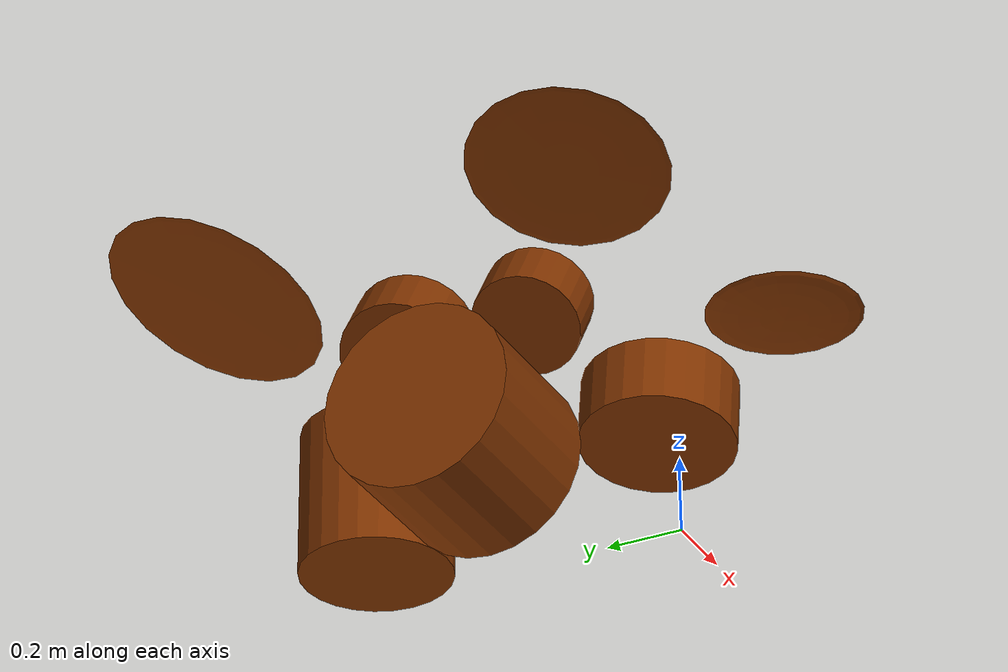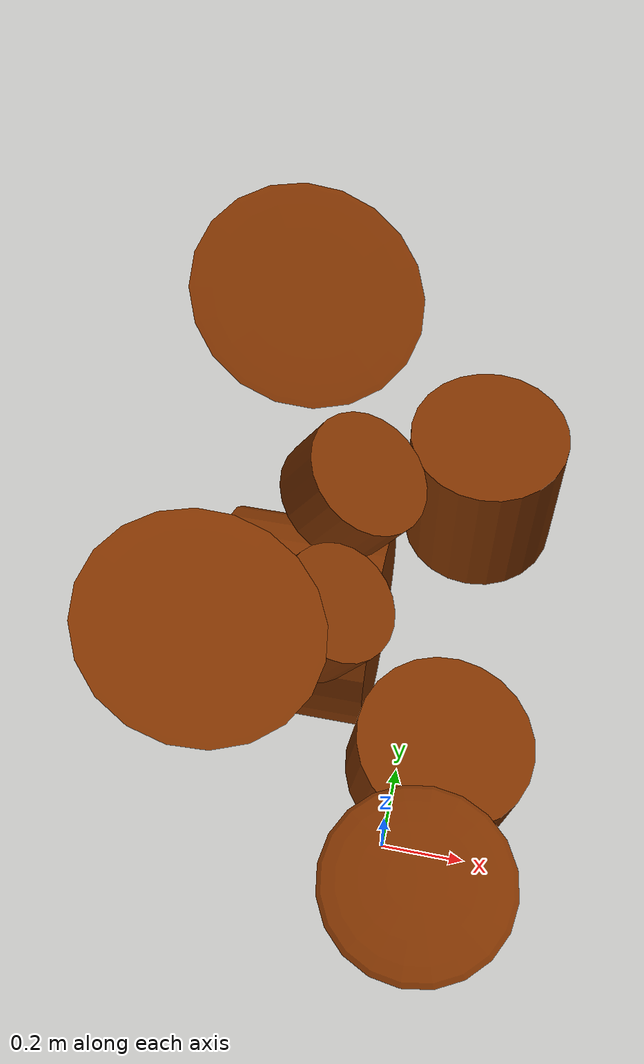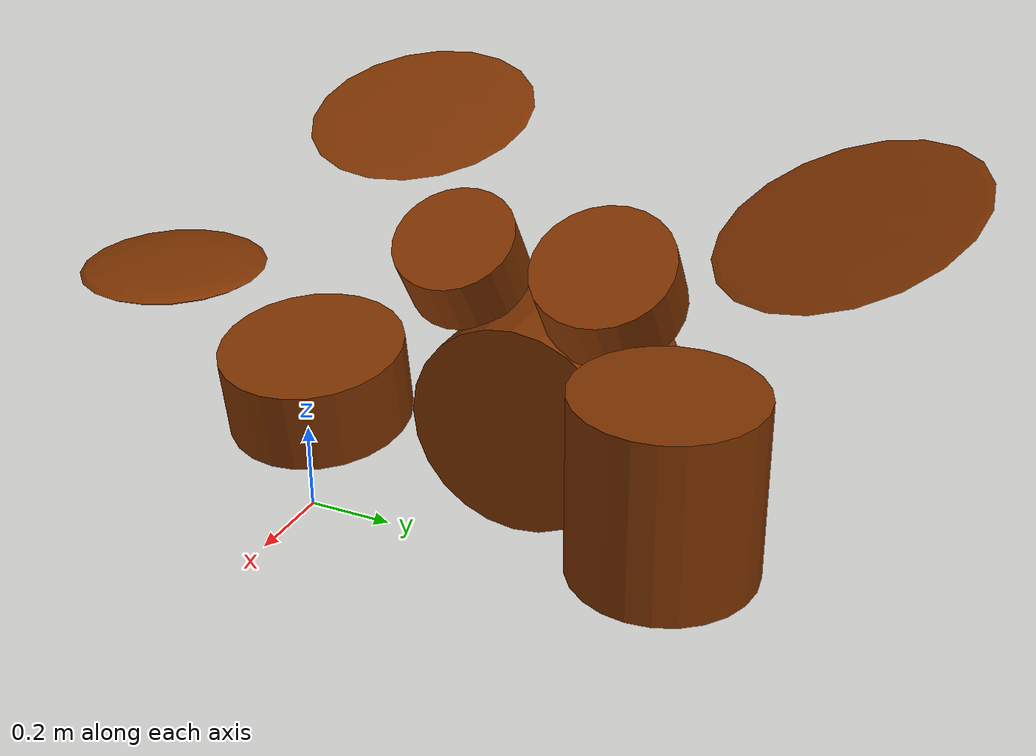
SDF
<?xml version="1.0" ?>
<sdf version="1.7">
    <model name="drumkit">
    <static>true</static>
    <link name="snare">
    <collision name="snare">
        <pose>.1 .1 .4 0 .14 0</pose>
        <geometry>
            <cylinder>
                <length>.18</length>
                <radius>0.2</radius>
            </cylinder>
        </geometry>
        <drake:proximity_properties>
          <drake:point_contact_stiffness>
            20000
          </drake:point_contact_stiffness>
          <drake:hunt_crossley_dissipation>
            2
          </drake:hunt_crossley_dissipation>
            </drake:proximity_properties>
    </collision>
    <visual name="snare">
        <pose>.1 .1 .4 0 .14 0</pose>
        <geometry>
            <cylinder>
                <length>.18</length>
                <radius>0.2</radius>
            </cylinder>
        </geometry>
        <material>
            <diffuse>.5 .2 0 1</diffuse>
        </material>
    </visual>
    </link>
    <link name="hi_tom">
    <collision name="hi_tom">
        <pose>-.2 .3 .6 0 .55 0</pose>
        <geometry>
            <cylinder>
                <length>.15</length>
                <radius>0.14</radius>
            </cylinder>
        </geometry>
        <drake:proximity_properties>
          <drake:point_contact_stiffness>
            20000
          </drake:point_contact_stiffness>
          <drake:hunt_crossley_dissipation>
            2
            </drake:hunt_crossley_dissipation>

        </drake:proximity_properties>
    </collision>
    <visual name="hi_tom">
        <pose>-.2 .3 .6 0 .55 0</pose>
        <geometry>
            <cylinder>
                <length>.15</length>
                <radius>0.14</radius>
            </cylinder>
        </geometry>
        <material>
            <diffuse>.5 .2 0 1</diffuse>
        </material>
    </visual>
    </link>

    <link name="mid_tom">
    <collision name="mid_tom">
        <pose>-.2 0.65 .6 0 .55 0</pose>
        <geometry>
            <cylinder>
                <length>.15</length>
                <radius>0.16</radius>
            </cylinder>
        </geometry>
        <drake:proximity_properties>
          <drake:point_contact_stiffness>
            20000
          </drake:point_contact_stiffness>
          <drake:hunt_crossley_dissipation>
            2
          </drake:hunt_crossley_dissipation>
        </drake:proximity_properties>
    </collision>
    <visual name="mid_tom">
        <pose>-.2 0.65 .6 0 .55 0</pose>
        <geometry>
            <cylinder>
                <length>.15</length>
                <radius>0.16</radius>
            </cylinder>
        </geometry>
        <material>
            <diffuse>.5 .2 0 1</diffuse>
        </material>
    </visual>
    </link>

    <link name="low_tom">
    <collision name="low_tom">
        <pose>.1 0.9 .35 0 0 0</pose>
        <geometry>
            <cylinder>
                <length>.4</length>
                <radius>0.2</radius>
            </cylinder>
        </geometry>
        <drake:proximity_properties>
          <drake:point_contact_stiffness>
            20000
          </drake:point_contact_stiffness>
          <drake:hunt_crossley_dissipation>
            2
          </drake:hunt_crossley_dissipation>
        </drake:proximity_properties>
    </collision>
    <visual name="low_tom">
        <pose>.1 0.9 .35 0 0 0</pose>
        <geometry>
            <cylinder>
                <length>.4</length>
                <radius>0.2</radius>
            </cylinder>
        </geometry>
        <material>
            <diffuse>.5 .2 0 1</diffuse>
        </material>
    </visual>
    </link>

    <link name="hi_hat">
    <collision name="hi_hat">
        <pose>.1 -.25 .6 0 0 0</pose>
        <geometry>
            <ellipsoid>
                <radii>.2 .2 .02</radii>
            </ellipsoid>
        </geometry>
        <drake:proximity_properties>
          <drake:point_contact_stiffness>
            20000
          </drake:point_contact_stiffness>
          <drake:hunt_crossley_dissipation>
            2
          </drake:hunt_crossley_dissipation>
        </drake:proximity_properties>
    </collision>
    <visual name="hi_hat">
        <pose>.1 -.25 .6 0 0 0</pose>
        <geometry>
            <ellipsoid>
                <radii>.2 .2 .02</radii>
            </ellipsoid>
        </geometry>
        <material>
            <diffuse>.5 .2 0 1</diffuse>
        </material>
    </visual>
    </link>

    <link name="crash">
    <collision name="crash">
         <pose>-.4 .1 .85 0 .3 0</pose>
        <geometry>
            <ellipsoid>
                <radii>.26 .26 .005</radii>
            </ellipsoid>
        </geometry>

        <drake:proximity_properties>
          <drake:point_contact_stiffness>
            20000
          </drake:point_contact_stiffness>
          <drake:hunt_crossley_dissipation>
            2
          </drake:hunt_crossley_dissipation>
        </drake:proximity_properties>
    </collision>
    <visual name="crash">
        <pose>-.4 .1 .85 0 .3 0</pose>
        <geometry>
            <ellipsoid>
                <radii>.26 .26 .005</radii>
            </ellipsoid>
        </geometry>
        <material>
            <diffuse>.5 .2 0 1</diffuse>
        </material>
    </visual>
    </link>

    <link name="ride">
    <collision name="ride">
        <pose>-.40 1.1 .75 .3 .3 0</pose>
        <geometry>
            <ellipsoid>
                <radii>.3 .3 .005</radii>
            </ellipsoid>
        </geometry>

        <drake:proximity_properties>
          <drake:point_contact_stiffness>
            20000
          </drake:point_contact_stiffness>
          <drake:hunt_crossley_dissipation>
            2
          </drake:hunt_crossley_dissipation>
        </drake:proximity_properties>
    </collision>
    <visual name="ride">
        <pose>-.40 1.1 .75 .3 .3 0</pose>
        <geometry>
            <ellipsoid>
                <radii>.3 .3 .005</radii>
            </ellipsoid>
        </geometry>
        <material>
            <diffuse>.5 .2 0 1</diffuse>
        </material>
    </visual>
    </link>

    <link name="kick">
    <collision name="kick">
        <pose>-.3 .47 .25 0 1.57 0</pose>
        <geometry>
            <cylinder>
                <length>.4</length>
                <radius>0.25</radius>
            </cylinder>
        </geometry>

        <drake:proximity_properties>
          <drake:point_contact_stiffness>
            20000
          </drake:point_contact_stiffness>
          <drake:hunt_crossley_dissipation>
            2
          </drake:hunt_crossley_dissipation>
        </drake:proximity_properties>
    </collision>
    <visual name="kick">
        <pose>-.3 .47 .25 0 1.57 0</pose>
        <geometry>
            <cylinder>
                <length>.4</length>
                <radius>0.25</radius>
            </cylinder>
        </geometry>
        <material>
            <diffuse>.5 .2 0 1</diffuse>
        </material>
    </visual>
    </link>

    </model>
    </sdf>
